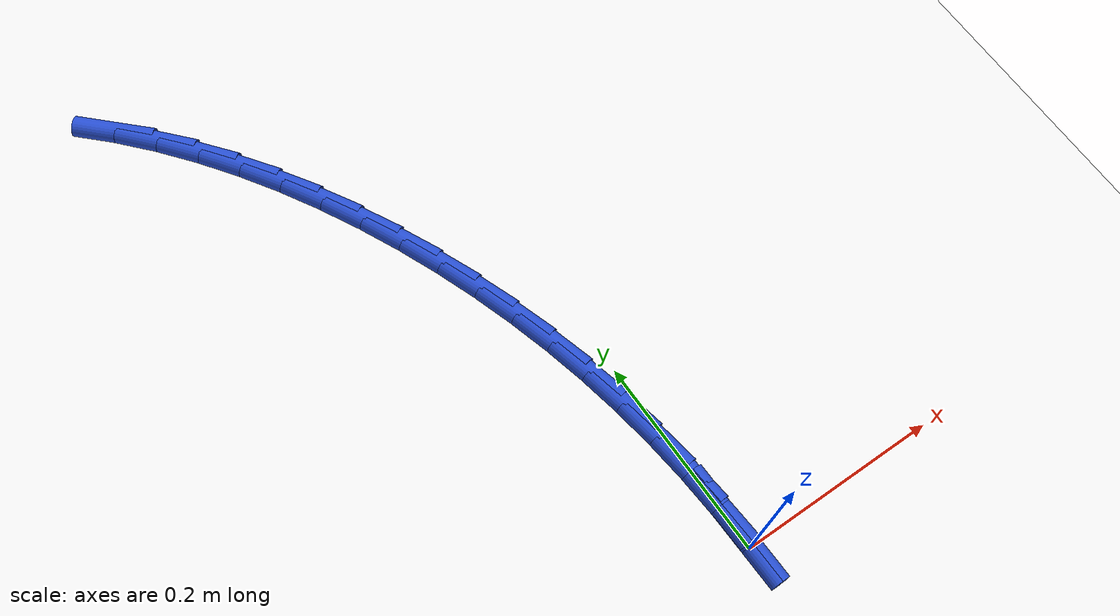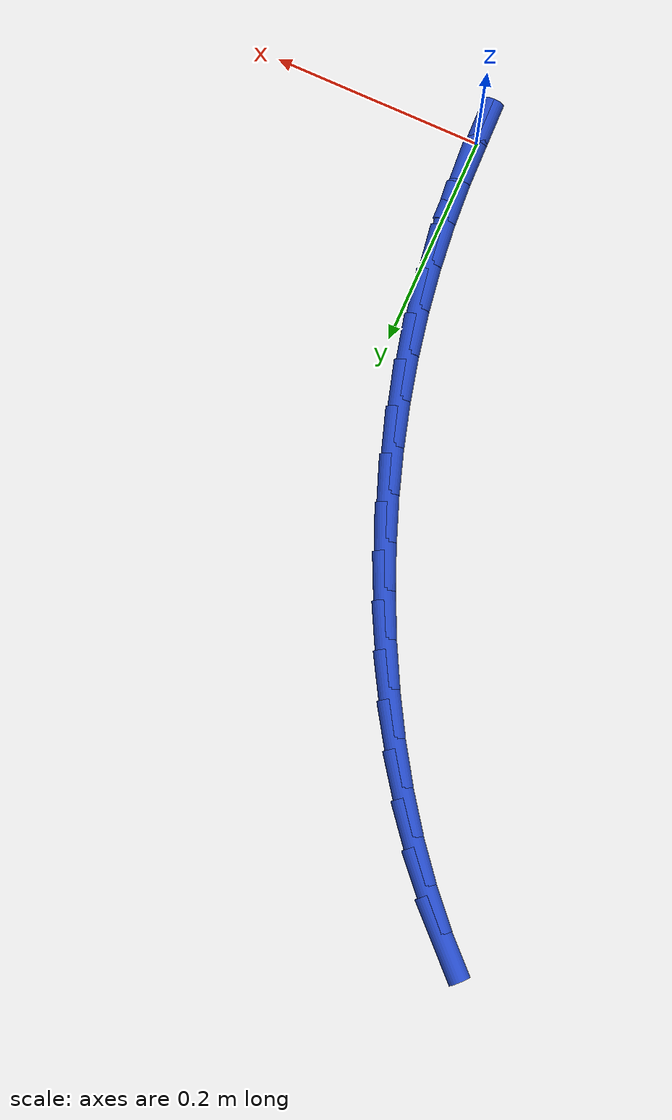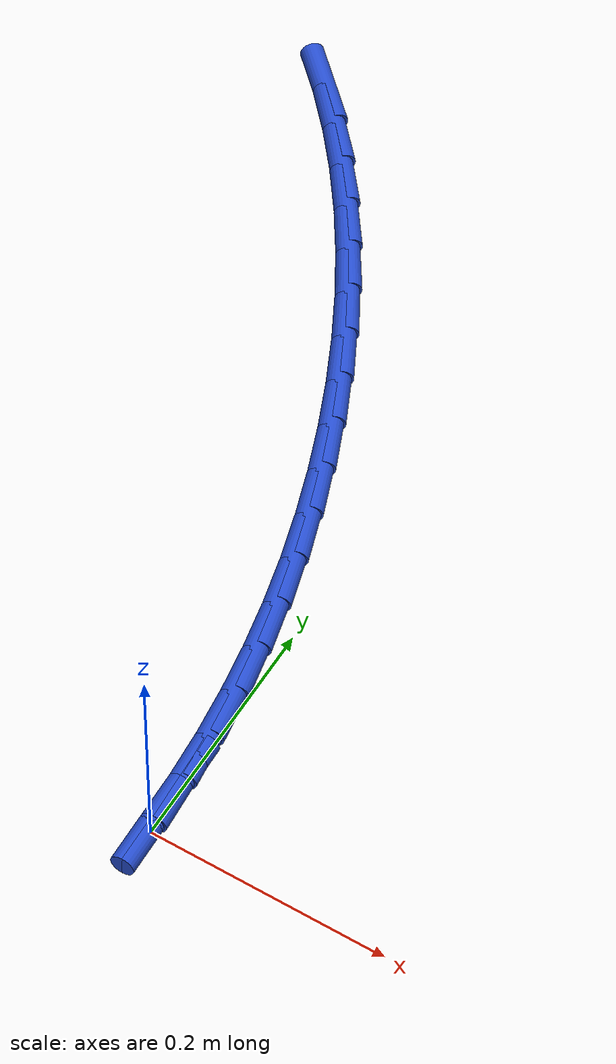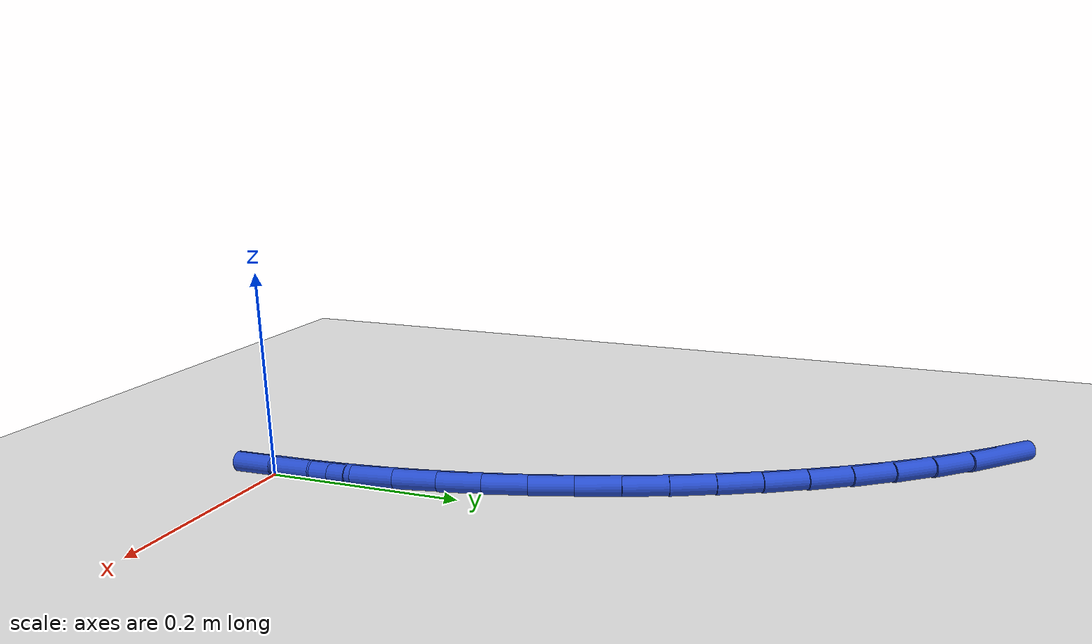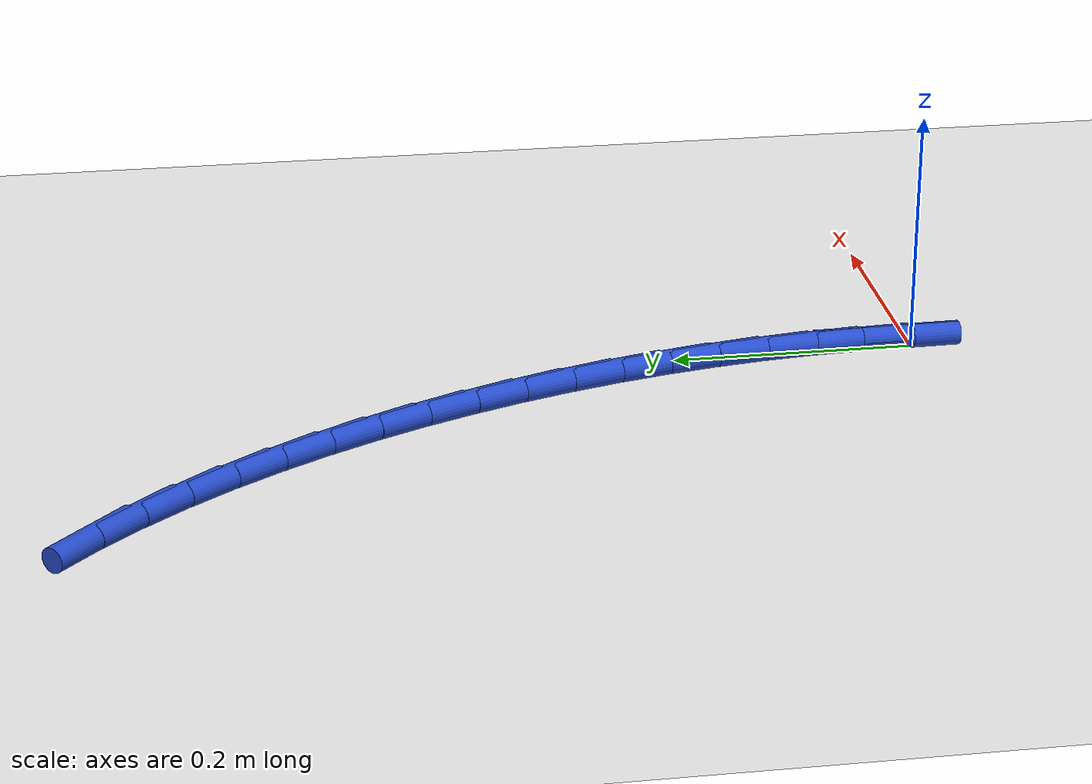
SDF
<sdf version="1.6">
 <world name="default">
  <model name="ground_plane">
   <static>1</static>
   <link name="link">
    <collision name="collision">
     <geometry><plane><normal>0 0 1</normal><size>100 100</size></plane></geometry>
     <surface><friction><ode><mu>100</mu><mu2>50</mu2></ode></friction></surface>
    </collision>
    <visual name="visual">
     <cast_shadows>0</cast_shadows>
     <geometry><plane><normal>0 0 1</normal><size>100 100</size></plane></geometry>
     <material>
      <script><uri>file://media/materials/scripts/gazebo.material</uri><name>Gazebo/WhiteGlow</name></script>
     </material>
    </visual>
   </link>
  </model>
  <model name="line">
   <link name="link_0">
    <pose>0.0 -5.551115123125783e-17 0.01 0 1.57 -1.5499981170288915</pose>
    <collision name="collision">
     <geometry><cylinder><radius>0.01</radius><length>0.08</length></cylinder></geometry>
    </collision>
    <visual name="visual">
     <material>
      <script><name>Gazebo/Blue</name><uri>file://media/materials/scripts/gazebo.material</uri></script>
     </material>
     <geometry><cylinder><radius>0.01</radius><length>0.08</length></cylinder></geometry>
    </visual>
   </link>
   <link name="link_1">
    <pose>-0.0008856358317259259 0.04257617071349047 0.01 0 1.57 -1.5057407503299605</pose>
    <collision name="collision">
     <geometry><cylinder><radius>0.01</radius><length>0.08</length></cylinder></geometry>
    </collision>
    <visual name="visual">
     <material>
      <script><name>Gazebo/Blue</name><uri>file://media/materials/scripts/gazebo.material</uri></script>
     </material>
     <geometry><cylinder><radius>0.01</radius><length>0.08</length></cylinder></geometry>
    </visual>
   </link>
   <link name="link_2">
    <pose>-0.003656804995597007 0.08511301081483776 0.01 0 1.57 -1.462009702250215</pose>
    <collision name="collision">
     <geometry><cylinder><radius>0.01</radius><length>0.08</length></cylinder></geometry>
    </collision>
    <visual name="visual">
     <material>
      <script><name>Gazebo/Blue</name><uri>file://media/materials/scripts/gazebo.material</uri></script>
     </material>
     <geometry><cylinder><radius>0.01</radius><length>0.08</length></cylinder></geometry>
    </visual>
   </link>
   <link name="link_3">
    <pose>-0.008293048256093921 0.12756252683826397 0.01 0 1.57 -1.4188169989387012</pose>
    <collision name="collision">
     <geometry><cylinder><radius>0.01</radius><length>0.08</length></cylinder></geometry>
    </collision>
    <visual name="visual">
     <material>
      <script><name>Gazebo/Blue</name><uri>file://media/materials/scripts/gazebo.material</uri></script>
     </material>
     <geometry><cylinder><radius>0.01</radius><length>0.08</length></cylinder></geometry>
    </visual>
   </link>
   <link name="link_4">
    <pose>-0.0147739063776973 0.1698767253179912 0.01 0 1.57 -1.3761675677630327</pose>
    <collision name="collision">
     <geometry><cylinder><radius>0.01</radius><length>0.08</length></cylinder></geometry>
    </collision>
    <visual name="visual">
     <material>
      <script><name>Gazebo/Blue</name><uri>file://media/materials/scripts/gazebo.material</uri></script>
     </material>
     <geometry><cylinder><radius>0.01</radius><length>0.08</length></cylinder></geometry>
    </visual>
   </link>
   <link name="link_5">
    <pose>-0.023078920124887818 0.21200761278824146 0.01 0 1.57 -1.3340599328503213</pose>
    <collision name="collision">
     <geometry><cylinder><radius>0.01</radius><length>0.08</length></cylinder></geometry>
    </collision>
    <visual name="visual">
     <material>
      <script><name>Gazebo/Blue</name><uri>file://media/materials/scripts/gazebo.material</uri></script>
     </material>
     <geometry><cylinder><radius>0.01</radius><length>0.08</length></cylinder></geometry>
    </visual>
   </link>
   <link name="link_6">
    <pose>-0.03318763026214615 0.25390719578323695 0.01 0 1.57 -1.2924869544186555</pose>
    <collision name="collision">
     <geometry><cylinder><radius>0.01</radius><length>0.08</length></cylinder></geometry>
    </collision>
    <visual name="visual">
     <material>
      <script><name>Gazebo/Blue</name><uri>file://media/materials/scripts/gazebo.material</uri></script>
     </material>
     <geometry><cylinder><radius>0.01</radius><length>0.08</length></cylinder></geometry>
    </visual>
   </link>
   <link name="link_7">
    <pose>-0.045079577553952935 0.29552748083719976 0.01 0 1.57 -1.251436585511176</pose>
    <collision name="collision">
     <geometry><cylinder><radius>0.01</radius><length>0.08</length></cylinder></geometry>
    </collision>
    <visual name="visual">
     <material>
      <script><name>Gazebo/Blue</name><uri>file://media/materials/scripts/gazebo.material</uri></script>
     </material>
     <geometry><cylinder><radius>0.01</radius><length>0.08</length></cylinder></geometry>
    </visual>
   </link>
   <link name="link_8">
    <pose>-0.05873430276478879 0.3368204744843517 0.01 0 1.57 -1.2108926244376155</pose>
    <collision name="collision">
     <geometry><cylinder><radius>0.01</radius><length>0.08</length></cylinder></geometry>
    </collision>
    <visual name="visual">
     <material>
      <script><name>Gazebo/Blue</name><uri>file://media/materials/scripts/gazebo.material</uri></script>
     </material>
     <geometry><cylinder><radius>0.01</radius><length>0.08</length></cylinder></geometry>
    </visual>
   </link>
   <link name="link_9">
    <pose>-0.07413134665913446 0.37773818325891534 0.01 0 1.57 -1.1706423900203649</pose>
    <collision name="collision">
     <geometry><cylinder><radius>0.01</radius><length>0.08</length></cylinder></geometry>
    </collision>
    <visual name="visual">
     <material>
      <script><name>Gazebo/Blue</name><uri>file://media/materials/scripts/gazebo.material</uri></script>
     </material>
     <geometry><cylinder><radius>0.01</radius><length>0.08</length></cylinder></geometry>
    </visual>
   </link>
   <link name="link_10">
    <pose>-0.09125207357381432 0.4182151374503532 0.01 0 1.57 -1.1294338119416778</pose>
    <collision name="collision">
     <geometry><cylinder><radius>0.01</radius><length>0.08</length></cylinder></geometry>
    </collision>
    <visual name="visual">
     <material>
      <script><name>Gazebo/Blue</name><uri>file://media/materials/scripts/gazebo.material</uri></script>
     </material>
     <geometry><cylinder><radius>0.01</radius><length>0.08</length></cylinder></geometry>
    </visual>
   </link>
   <link name="link_11">
    <pose>-0.11008838403140446 0.45808489358547655 0.01 0 1.57 -1.0865246834526134</pose>
    <collision name="collision">
     <geometry><cylinder><radius>0.01</radius><length>0.08</length></cylinder></geometry>
    </collision>
    <visual name="visual">
     <material>
      <script><name>Gazebo/Blue</name><uri>file://media/materials/scripts/gazebo.material</uri></script>
     </material>
     <geometry><cylinder><radius>0.01</radius><length>0.08</length></cylinder></geometry>
    </visual>
   </link>
   <link name="link_12">
    <pose>-0.13063595414563267 0.4971448247321265 0.01 0 1.57 -1.0415426561250383</pose>
    <collision name="collision">
     <geometry><cylinder><radius>0.01</radius><length>0.08</length></cylinder></geometry>
    </collision>
    <visual name="visual">
     <material>
      <script><name>Gazebo/Blue</name><uri>file://media/materials/scripts/gazebo.material</uri></script>
     </material>
     <geometry><cylinder><radius>0.01</radius><length>0.08</length></cylinder></geometry>
    </visual>
   </link>
   <link name="link_13">
    <pose>-0.1528904648598726 0.5351922576731293 0.01 0 1.57 -0.9941126918134973</pose>
    <collision name="collision">
     <geometry><cylinder><radius>0.01</radius><length>0.08</length></cylinder></geometry>
    </collision>
    <visual name="visual">
     <material>
      <script><name>Gazebo/Blue</name><uri>file://media/materials/scripts/gazebo.material</uri></script>
     </material>
     <geometry><cylinder><radius>0.01</radius><length>0.08</length></cylinder></geometry>
    </visual>
   </link>
   <link name="link_14">
    <pose>-0.17684759711749812 0.5720245191913107 0.01 0 1.57 -0.9438587285578655</pose>
    <collision name="collision">
     <geometry><cylinder><radius>0.01</radius><length>0.08</length></cylinder></geometry>
    </collision>
    <visual name="visual">
     <material>
      <script><name>Gazebo/Blue</name><uri>file://media/materials/scripts/gazebo.material</uri></script>
     </material>
     <geometry><cylinder><radius>0.01</radius><length>0.08</length></cylinder></geometry>
    </visual>
   </link>
   <link name="link_15">
    <pose>-0.2025030318618829 0.6074389360694968 0.01 0 1.57 -0.8904100417443507</pose>
    <collision name="collision">
     <geometry><cylinder><radius>0.01</radius><length>0.08</length></cylinder></geometry>
    </collision>
    <visual name="visual">
     <material>
      <script><name>Gazebo/Blue</name><uri>file://media/materials/scripts/gazebo.material</uri></script>
     </material>
     <geometry><cylinder><radius>0.01</radius><length>0.08</length></cylinder></geometry>
    </visual>
   </link>
   <link name="link_16">
    <pose>-0.2298524500364007 0.6412328350905137 0.01 0 1.57 -0.8334129517244118</pose>
    <collision name="collision">
     <geometry><cylinder><radius>0.01</radius><length>0.08</length></cylinder></geometry>
    </collision>
    <visual name="visual">
     <material>
      <script><name>Gazebo/Blue</name><uri>file://media/materials/scripts/gazebo.material</uri></script>
     </material>
     <geometry><cylinder><radius>0.01</radius><length>0.08</length></cylinder></geometry>
    </visual>
   </link>
   <link name="link_17">
    <pose>-0.2588915325844253 0.6732035430371872 0.01 0 1.57 -0.7725491331180838</pose>
    <collision name="collision">
     <geometry><cylinder><radius>0.01</radius><length>0.08</length></cylinder></geometry>
    </collision>
    <visual name="visual">
     <material>
      <script><name>Gazebo/Blue</name><uri>file://media/materials/scripts/gazebo.material</uri></script>
     </material>
     <geometry><cylinder><radius>0.01</radius><length>0.08</length></cylinder></geometry>
    </visual>
   </link>
   <link name="link_160">
    <pose>-1.0408340855860843e-17 -2.220446049250313e-16 0.01 0 1.57 -1.54980238802067</pose>
    <collision name="collision">
     <geometry><cylinder><radius>0.01</radius><length>0.08</length></cylinder></geometry>
    </collision>
    <visual name="visual">
     <material>
      <script><name>Gazebo/Blue</name><uri>file://media/materials/scripts/gazebo.material</uri></script>
     </material>
     <geometry><cylinder><radius>0.01</radius><length>0.08</length></cylinder></geometry>
    </visual>
   </link>
   <link name="link_161">
    <pose>-0.0008939928043870064 0.0425771204274197 0.01 0 1.57 -1.5498023880206695</pose>
    <collision name="collision">
     <geometry><cylinder><radius>0.01</radius><length>0.08</length></cylinder></geometry>
    </collision>
    <visual name="visual">
     <material>
      <script><name>Gazebo/Blue</name><uri>file://media/materials/scripts/gazebo.material</uri></script>
     </material>
     <geometry><cylinder><radius>0.01</radius><length>0.08</length></cylinder></geometry>
    </visual>
   </link>
  </model>
 </world>
</sdf>
